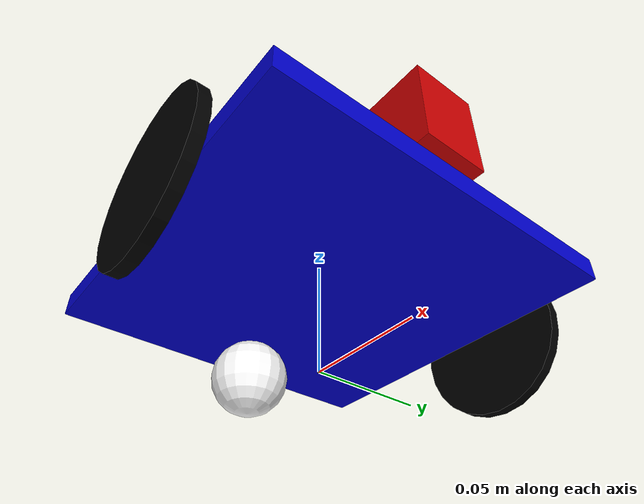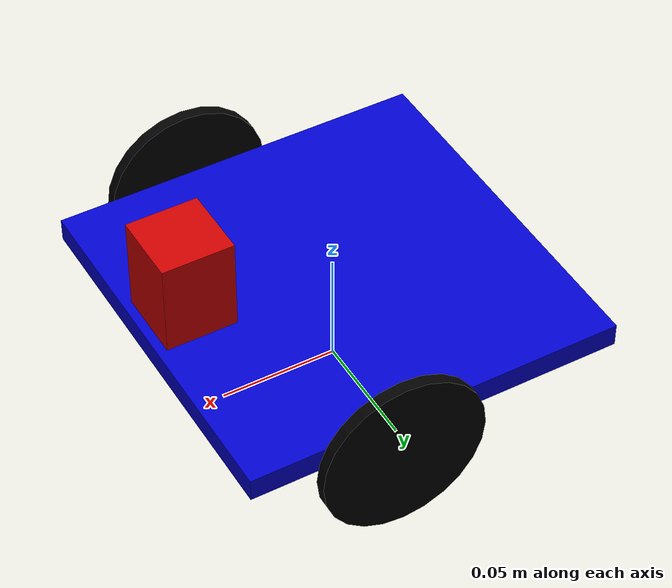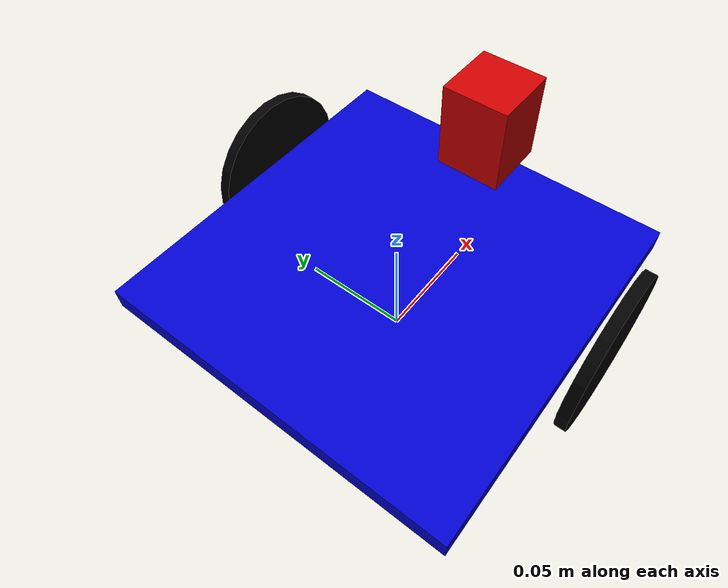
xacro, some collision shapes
<?xml version="1.0"?>

<robot xmlns:xacro="http://www.ros.org/wiki/xacro" name="simbot">
	<material name="red">
		<color rgba="0.8 0 0 1"/>
	</material>
	<material name="blue">
		<color rgba="0 0 0.8 1"/>
	</material>
	<material name="black">
		<color rgba="0 0 0 1"/>
	</material>
	<material name="white">
		<color rgba="1 1 1 1"/>
	</material>

	<xacro:property name="base_width" value="0.16"/>
	<xacro:property name="base_length" value="0.16"/>
	<xacro:property name="base_wheel_gap" value="0.007"/>
	<xacro:property name="wheel_radius" value="0.035"/>
	<xacro:property name="wheel_seperation" value="0.15"/>
	<xacro:property name="wheel_joint_offset" value="0.02"/>
	<xacro:property name="caster_wheel_radius" value="${wheel_radius/2}"/>
	<xacro:property name="caster_wheel_joint_offset" value="-0.052"/>
	<xacro:property name="laser_size_x" value="0.03"/>
	<xacro:property name="laser_size_y" value="0.03"/>
	<xacro:property name="laser_size_z" value="0.04"/>
	<xacro:property name="laser_origin_x" value="0.065"/>
	<xacro:property name="laser_origin_y" value="0"/>
	<xacro:property name="laser_origin_z" value="0.035"/>

  <!--
  ==============================================================================
	Robot base
  ==============================================================================
	-->

	<xacro:macro name="box_inertia" params="m w h d">
		<inertial>
			<mass value="${m}"/>
			<inertia
				ixx="${m/12.0 * (d*d + h*h)}"
				ixy="0.0"
				ixz="0.0"
				iyy="${m/12.0 * (w*w + h*h)}"
				iyz="0.0"
				izz="${m/12.0 * (w*w + d*d)}"/>
		</inertial>
	</xacro:macro>

	<link name="base_footprint">
		<xacro:box_inertia m="20" w="0.001" h="0.001" d="0.001"/>
		<visual>
			<origin xyz="0 0 0" rpy="0 0 0"/>
			<geometry>
				<box size="0.001 0.001 0.001"/>
			</geometry>
		</visual>
	</link>

	<link name="base_link">
		<xacro:box_inertia m="10" w="${base_length}" h="${base_width}" d="0.01"/>
		<visual>
			<geometry>
				<box size="${base_length} ${base_width} 0.01"/>
			</geometry>
			<material name="blue"/>
		</visual>
		<collision>
			<geometry>
				<box size="${base_length} ${base_width} 0.01"/>
			</geometry>
		</collision>
	</link>

	<joint name="base_link_joint" type="fixed">
		<origin xyz="0 0 ${wheel_radius + 0.005}" rpy= "0 0 0"/>
		<parent link="base_footprint"/>
		<child link="base_link"/>
	</joint>

	<!--
	===============================================================================
	Left and right wheels
	===============================================================================
	-->
	<xacro:macro name="cylinder_inertial" params="m r h">
		<inertial>
			<mass value="${m}"/>
			<inertia
				ixx="${m*(3*r*r + h*h)/12}"
				ixy="0"
				ixz="0"
				iyy="${m*(3*r*r + h*h)/12}"
				iyz="0"
				izz="${m*r*r/2}"/>
		</inertial>
	</xacro:macro>

	<xacro:macro name="wheel" params="prefix reflect">
		<link name="${prefix}_wheel">
			<visual>
				<origin xyz="0 0 0" rpy="${pi/2} 0 0"/>
				<geometry>
					<cylinder radius="${wheel_radius}" length="0.005"/>
				</geometry>
				<material name="black"/>
			</visual>
			<collision>
				<origin xyz="0 0 0" rpy="${pi/2} 0 0"/>
				<geometry>
					<cylinder radius="${wheel_radius}" length="0.005"/>
				</geometry>
			</collision>
			<xacro:cylinder_inertial m="10" r="${wheel_radius}" h="0.005"/>
		</link>

		<joint name="${prefix}_wheel_joint" type="continuous">
			<origin xyz="${wheel_joint_offset} ${(base_width/2 + base_wheel_gap) * reflect} -0.005" rpy="0 0 0"/>
			<axis xyz="0 1 0" rpy="0 0 0"/>
			<parent link="base_link"/>
			<child link="${prefix}_wheel"/>
		</joint>
	</xacro:macro>

	<xacro:wheel prefix="left" reflect="1"/>
	<xacro:wheel prefix="right" reflect="-1"/>

	<!--
	===============================================================================
	Caster wheel
	===============================================================================
	-->
	<xacro:macro name="sphere_inertia" params="m r">
		<inertial>
			<mass value="${m}"/>
			<inertia
				ixx="${2.0*m*r*r/5.0}"
				ixy="0.0"
				ixz="0.0"
				iyy="${2.0*m*r*r/5.0}"
				iyz="0.0"
				izz="${2.0*m*r*r/5.0}"/>
		</inertial>
	</xacro:macro>

	<link name="caster_wheel">
		<visual>
			<origin xyz="0 0 0" rpy="0 0 0"/>
			<geometry>
				<sphere radius="${caster_wheel_radius}"/>
			</geometry>
			<material name="white"/>
		</visual>
		<collision>
			<origin xyz="0 0 0" rpy="0 0 0"/>
			<geometry>
				<sphere radius="${caster_wheel_radius}"/>
			</geometry>
		</collision>
		<xacro:sphere_inertia m="5" r="${caster_wheel_radius}"/>
	</link>

	<joint name="caster_wheel_joint" type="continuous">
		<origin xyz="${caster_wheel_joint_offset} 0 -${caster_wheel_radius + 0.005}" rpy="0 0 0"/>
		<axis xyz="0 1 0" rpy="0 0 0"/>
		<parent link="base_link"/>
		<child link="caster_wheel"/>
	</joint>

	<!--
	===============================================================================
	Laser scanner
	===============================================================================
	-->
	<link name="sensor_laser">
		<visual>
			<geometry>
				<mesh filename="package://simbot_description/meshes/hokuyo.dae"/>
			</geometry>
			<material name="red"/>
		</visual>
		<collision>
			<geometry>
				<box size="${laser_size_x} ${laser_size_y} ${laser_size_z}"/>
			</geometry>
		</collision>
		<xacro:box_inertia m="0.2" w="${laser_size_x}" h="${laser_size_y}" d="${laser_size_z}"/>
	</link>

	<joint name="sensor_laser_joint" type="fixed">
		<origin xyz="${laser_origin_x} ${laser_origin_y} ${laser_origin_z}" rpy="0 0 0"/>
		<parent link="base_link"/>
		<child link="sensor_laser"/>
	</joint>

	<!--
	===============================================================================
	Gazebo plugins
	===============================================================================
	-->
	<xacro:include filename="$(find simbot_description)/urdf/simbot_gazebo_plugins.xacro"/>
</robot>
